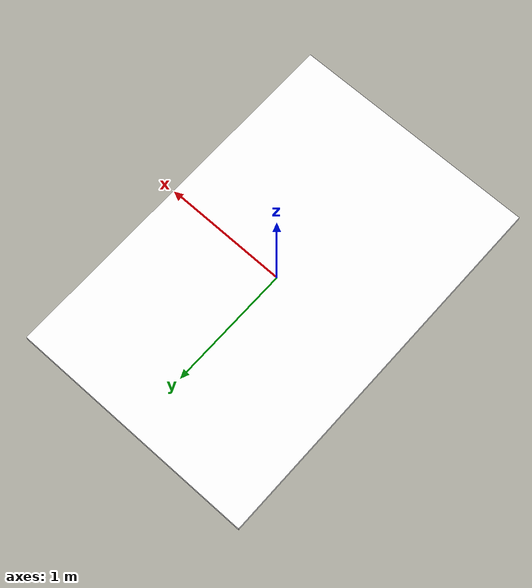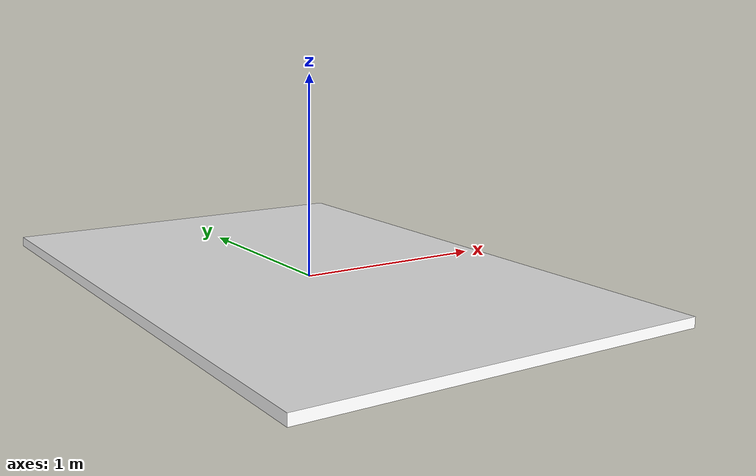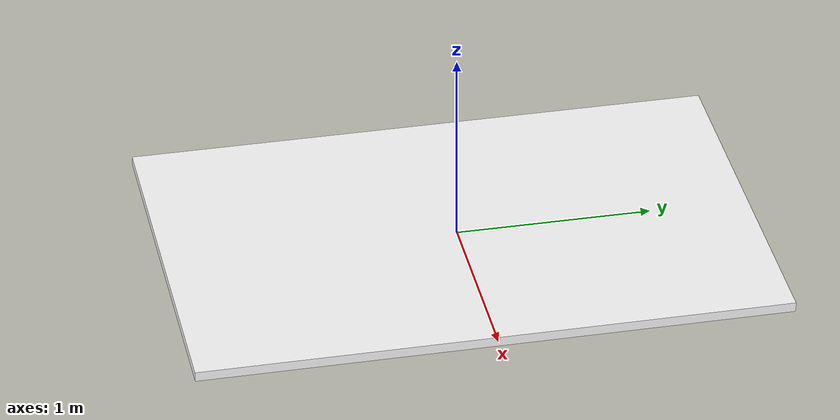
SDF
<?xml version="1.0"?>
    <sdf version="1.7">
    <model name="table">
        <pose>0 0 0 0 0 0</pose>
        <link name="table_link">
        <inertial>
            <mass>1.0</mass>
            <inertia>
            <ixx>0.00104</ixx>
            <ixy>0.0</ixy>
            <ixz>0.0</ixz>
            <iyy>0.00354</iyy>
            <iyz>0.0</iyz>
            <izz>0.00417</izz>
            </inertia>
        </inertial>
        <collision name="collision">
            <geometry>
            <box>
                <size>2.5 1.2 .05</size>
            </box>
            </geometry>
        </collision>
        <visual name="visual">
            <geometry>
            <box>
                <size>2.0 3.0 .05</size>
            </box>
            </geometry>
            <material>
            <diffuse>1.0 1.0 1.0 1.0</diffuse>
            </material>
        </visual>
        </link>
    </model>
    </sdf>
